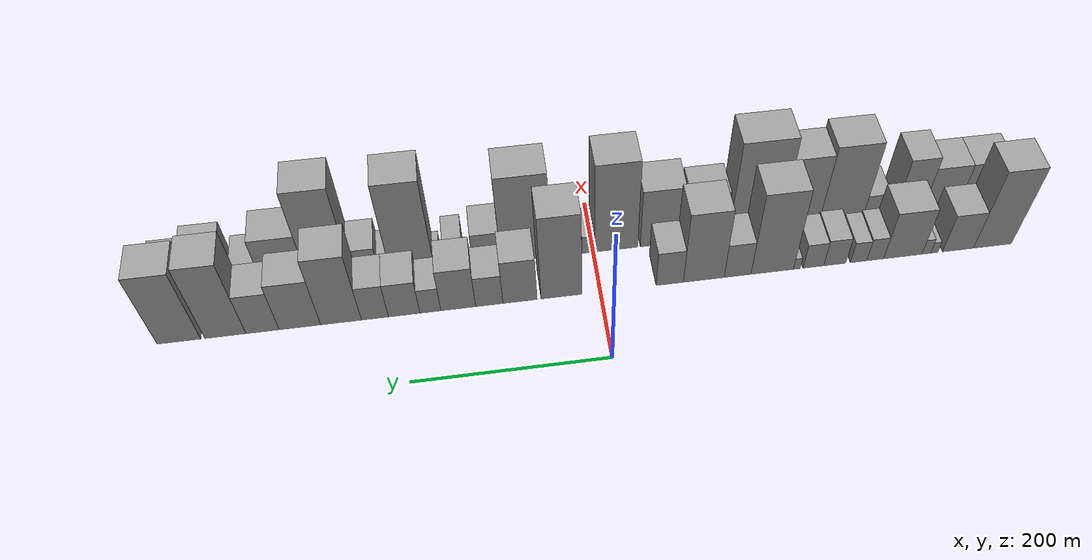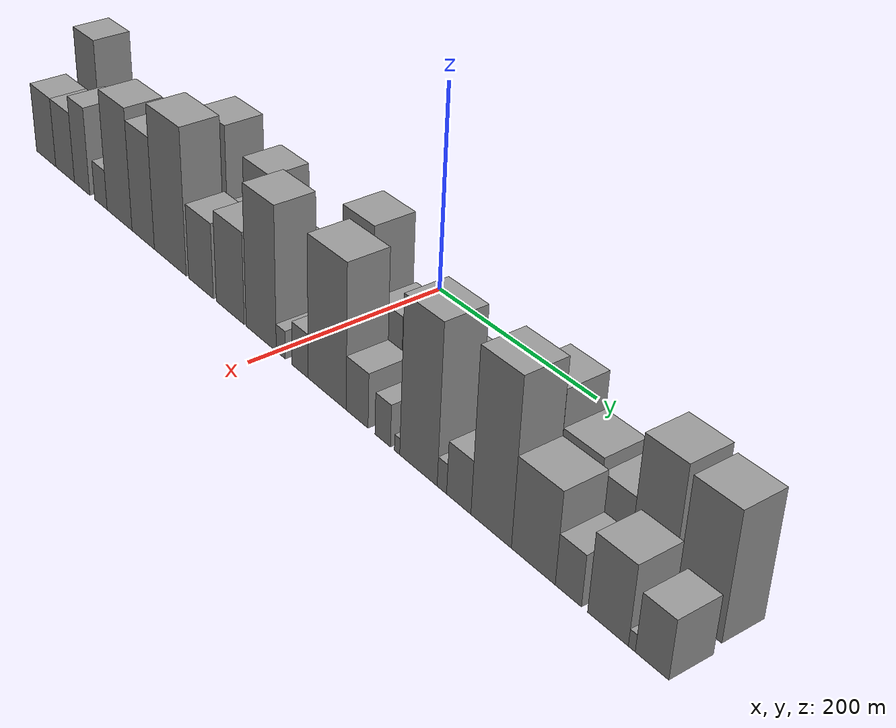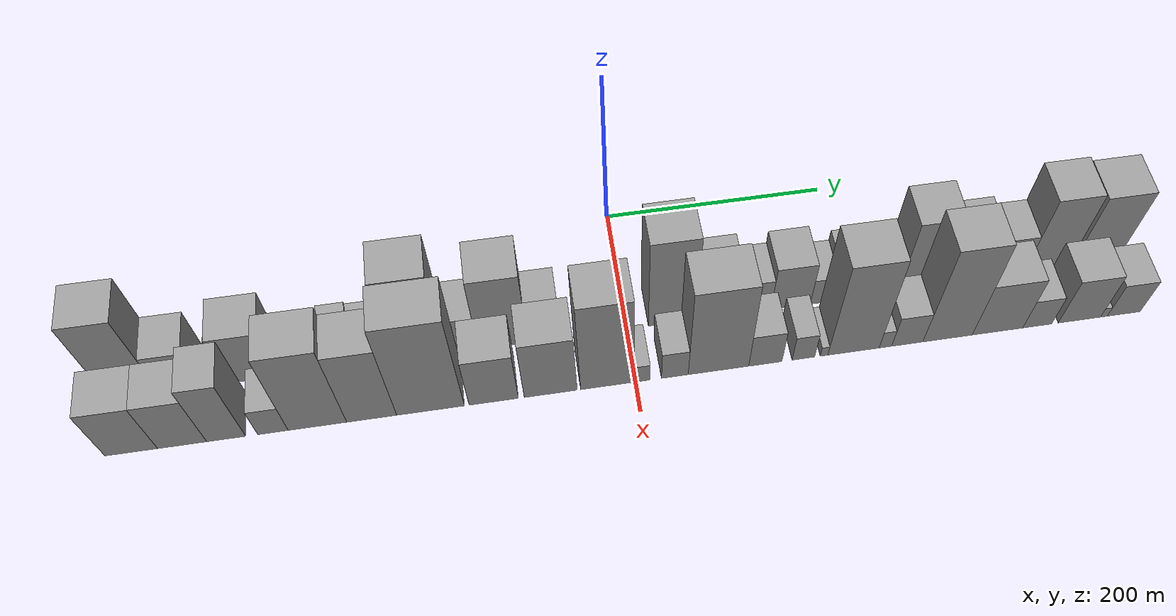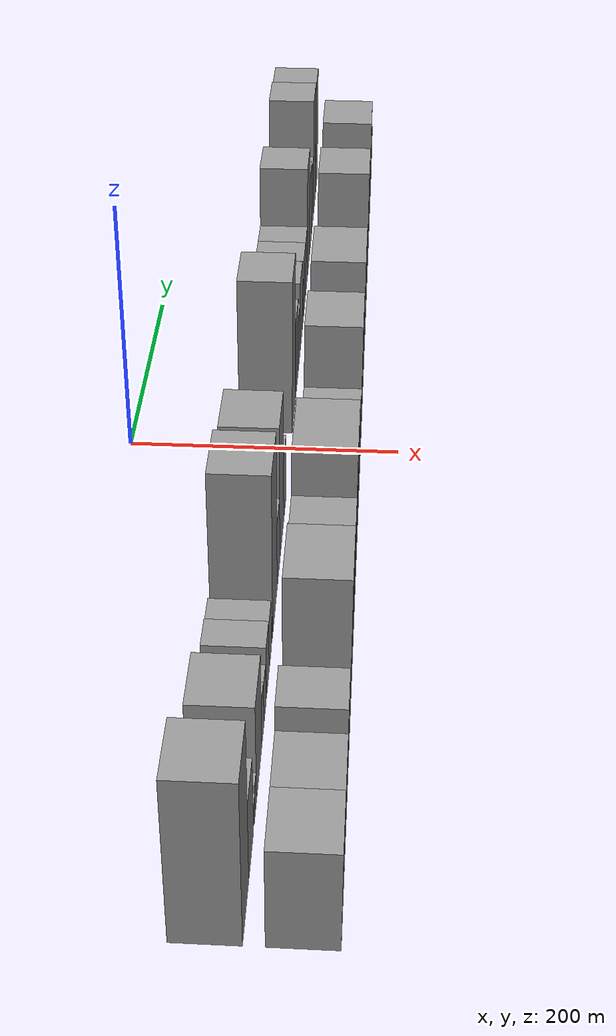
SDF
<sdf version="1.6">
 <world name="default">
  <scene>
   <sky><clouds><speed>12</speed></clouds></sky>
   <ambient>0.4 0.4 0.4 1</ambient>
   <background>0.7 0.7 0.7 1</background>
   <shadows>1</shadows>
  </scene>
  <gravity>0 0 -9.8066</gravity>
  <magnetic_field>6e-06 2.3e-05 -4.2e-05</magnetic_field>
  <physics default="0" name="default_physics" type="ode">
   <ode>
    <solver>
     <type>quick</type>
     <iters>10</iters>
     <sor>1.0</sor>
     <use_dynamic_moi_rescaling>0</use_dynamic_moi_rescaling>
    </solver>
    <constraints>
     <cfm>0</cfm>
     <erp>0.2</erp>
     <contact_max_correcting_vel>100</contact_max_correcting_vel>
     <contact_surface_layer>0.001</contact_surface_layer>
    </constraints>
   </ode>
   <max_step_size>0.004</max_step_size>
   <real_time_factor>1</real_time_factor>
   <real_time_update_rate>250</real_time_update_rate>
  </physics>
  <light name="sun" type="directional">
   <pose>0 0 10 0 0 0</pose>
   <diffuse>0.8 0.8 0.8 1</diffuse>
   <specular>0.2 0.2 0.2 1</specular>
   <attenuation>
    <range>1000</range>
    <constant>0.9</constant>
    <linear>0.01</linear>
    <quadratic>0.001</quadratic>
   </attenuation>
   <direction>-0.5 0.1 -0.9</direction>
  </light>
  <model name="building_1">
   <static>1</static>
   <pose>100.0000 -422.8043 0 0.000000 0.000000 0.000000</pose>
   <link name="link">
    <pose>0 0 61.50 0 0 0</pose>
    <collision name="collision"><geometry><box><size>40.0000 42.3913 123.0000</size></box></geometry></collision>
    <visual name="visual">
     <cast_shadows>0</cast_shadows>
     <geometry><box><size>40.0000 42.3913 123.0000</size></box></geometry>
     <material>
      <script>
       <uri>model://grey_wall/materials/scripts</uri>
       <uri>model://grey_wall/materials/textures</uri>
       <name>vrc/grey_wall</name>
      </script>
     </material>
    </visual>
   </link>
  </model>
  <model name="building_2">
   <static>1</static>
   <pose>100.0000 -384.4804 0 0.000000 0.000000 0.000000</pose>
   <link name="link">
    <pose>0 0 30.00 0 0 0</pose>
    <collision name="collision"><geometry><box><size>40.0000 34.2565 60.0000</size></box></geometry></collision>
    <visual name="visual">
     <cast_shadows>0</cast_shadows>
     <geometry><box><size>40.0000 34.2565 60.0000</size></box></geometry>
     <material>
      <script>
       <uri>model://grey_wall/materials/scripts</uri>
       <uri>model://grey_wall/materials/textures</uri>
       <name>vrc/grey_wall</name>
      </script>
     </material>
    </visual>
   </link>
  </model>
  <model name="building_3">
   <static>1</static>
   <pose>100.0000 -358.4187 0 0.000000 0.000000 0.000000</pose>
   <link name="link">
    <pose>0 0 9.00 0 0 0</pose>
    <collision name="collision"><geometry><box><size>40.0000 7.8670 18.0000</size></box></geometry></collision>
    <visual name="visual">
     <cast_shadows>0</cast_shadows>
     <geometry><box><size>40.0000 7.8670 18.0000</size></box></geometry>
     <material>
      <script>
       <uri>model://grey_wall/materials/scripts</uri>
       <uri>model://grey_wall/materials/textures</uri>
       <name>vrc/grey_wall</name>
      </script>
     </material>
    </visual>
   </link>
  </model>
  <model name="building_4">
   <static>1</static>
   <pose>100.0000 -349.5618 0 0.000000 0.000000 0.000000</pose>
   <link name="link">
    <pose>0 0 12.00 0 0 0</pose>
    <collision name="collision"><geometry><box><size>40.0000 9.8467 24.0000</size></box></geometry></collision>
    <visual name="visual">
     <cast_shadows>0</cast_shadows>
     <geometry><box><size>40.0000 9.8467 24.0000</size></box></geometry>
     <material>
      <script>
       <uri>model://grey_wall/materials/scripts</uri>
       <uri>model://grey_wall/materials/textures</uri>
       <name>vrc/grey_wall</name>
      </script>
     </material>
    </visual>
   </link>
  </model>
  <model name="building_5">
   <static>1</static>
   <pose>100.0000 -323.5742 0 0.000000 0.000000 0.000000</pose>
   <link name="link">
    <pose>0 0 37.50 0 0 0</pose>
    <collision name="collision"><geometry><box><size>40.0000 42.1285 75.0000</size></box></geometry></collision>
    <visual name="visual">
     <cast_shadows>0</cast_shadows>
     <geometry><box><size>40.0000 42.1285 75.0000</size></box></geometry>
     <material>
      <script>
       <uri>model://grey_wall/materials/scripts</uri>
       <uri>model://grey_wall/materials/textures</uri>
       <name>vrc/grey_wall</name>
      </script>
     </material>
    </visual>
   </link>
  </model>
  <model name="building_6">
   <static>1</static>
   <pose>100.0000 -293.2980 0 0.000000 0.000000 0.000000</pose>
   <link name="link">
    <pose>0 0 18.00 0 0 0</pose>
    <collision name="collision"><geometry><box><size>40.0000 18.4240 36.0000</size></box></geometry></collision>
    <visual name="visual">
     <cast_shadows>0</cast_shadows>
     <geometry><box><size>40.0000 18.4240 36.0000</size></box></geometry>
     <material>
      <script>
       <uri>model://grey_wall/materials/scripts</uri>
       <uri>model://grey_wall/materials/textures</uri>
       <name>vrc/grey_wall</name>
      </script>
     </material>
    </visual>
   </link>
  </model>
  <model name="building_7">
   <static>1</static>
   <pose>100.0000 -275.1770 0 0.000000 0.000000 0.000000</pose>
   <link name="link">
    <pose>0 0 16.50 0 0 0</pose>
    <collision name="collision"><geometry><box><size>40.0000 17.8179 33.0000</size></box></geometry></collision>
    <visual name="visual">
     <cast_shadows>0</cast_shadows>
     <geometry><box><size>40.0000 17.8179 33.0000</size></box></geometry>
     <material>
      <script>
       <uri>model://grey_wall/materials/scripts</uri>
       <uri>model://grey_wall/materials/textures</uri>
       <name>vrc/grey_wall</name>
      </script>
     </material>
    </visual>
   </link>
  </model>
  <model name="building_8">
   <static>1</static>
   <pose>100.0000 -249.3098 0 0.000000 0.000000 0.000000</pose>
   <link name="link">
    <pose>0 0 21.00 0 0 0</pose>
    <collision name="collision"><geometry><box><size>40.0000 23.9167 42.0000</size></box></geometry></collision>
    <visual name="visual">
     <cast_shadows>0</cast_shadows>
     <geometry><box><size>40.0000 23.9167 42.0000</size></box></geometry>
     <material>
      <script>
       <uri>model://grey_wall/materials/scripts</uri>
       <uri>model://grey_wall/materials/textures</uri>
       <name>vrc/grey_wall</name>
      </script>
     </material>
    </visual>
   </link>
  </model>
  <model name="building_9">
   <static>1</static>
   <pose>100.0000 -226.1131 0 0.000000 0.000000 0.000000</pose>
   <link name="link">
    <pose>0 0 19.50 0 0 0</pose>
    <collision name="collision"><geometry><box><size>40.0000 22.4766 39.0000</size></box></geometry></collision>
    <visual name="visual">
     <cast_shadows>0</cast_shadows>
     <geometry><box><size>40.0000 22.4766 39.0000</size></box></geometry>
     <material>
      <script>
       <uri>model://grey_wall/materials/scripts</uri>
       <uri>model://grey_wall/materials/textures</uri>
       <name>vrc/grey_wall</name>
      </script>
     </material>
    </visual>
   </link>
  </model>
  <model name="building_10">
   <static>1</static>
   <pose>100.0000 -208.1964 0 0.000000 0.000000 0.000000</pose>
   <link name="link">
    <pose>0 0 9.00 0 0 0</pose>
    <collision name="collision"><geometry><box><size>40.0000 7.3569 18.0000</size></box></geometry></collision>
    <visual name="visual">
     <cast_shadows>0</cast_shadows>
     <geometry><box><size>40.0000 7.3569 18.0000</size></box></geometry>
     <material>
      <script>
       <uri>model://grey_wall/materials/scripts</uri>
       <uri>model://grey_wall/materials/textures</uri>
       <name>vrc/grey_wall</name>
      </script>
     </material>
    </visual>
   </link>
  </model>
  <model name="building_11">
   <static>1</static>
   <pose>100.0000 -181.6453 0 0.000000 0.000000 0.000000</pose>
   <link name="link">
    <pose>0 0 64.50 0 0 0</pose>
    <collision name="collision"><geometry><box><size>40.0000 45.7452 129.0000</size></box></geometry></collision>
    <visual name="visual">
     <cast_shadows>0</cast_shadows>
     <geometry><box><size>40.0000 45.7452 129.0000</size></box></geometry>
     <material>
      <script>
       <uri>model://grey_wall/materials/scripts</uri>
       <uri>model://grey_wall/materials/textures</uri>
       <name>vrc/grey_wall</name>
      </script>
     </material>
    </visual>
   </link>
  </model>
  <model name="building_12">
   <static>1</static>
   <pose>100.0000 -144.4509 0 0.000000 0.000000 0.000000</pose>
   <link name="link">
    <pose>0 0 27.00 0 0 0</pose>
    <collision name="collision"><geometry><box><size>40.0000 28.6436 54.0000</size></box></geometry></collision>
    <visual name="visual">
     <cast_shadows>0</cast_shadows>
     <geometry><box><size>40.0000 28.6436 54.0000</size></box></geometry>
     <material>
      <script>
       <uri>model://grey_wall/materials/scripts</uri>
       <uri>model://grey_wall/materials/textures</uri>
       <name>vrc/grey_wall</name>
      </script>
     </material>
    </visual>
   </link>
  </model>
  <model name="building_13">
   <static>1</static>
   <pose>100.0000 -108.4827 0 0.000000 0.000000 0.000000</pose>
   <link name="link">
    <pose>0 0 55.50 0 0 0</pose>
    <collision name="collision"><geometry><box><size>40.0000 43.2927 111.0000</size></box></geometry></collision>
    <visual name="visual">
     <cast_shadows>0</cast_shadows>
     <geometry><box><size>40.0000 43.2927 111.0000</size></box></geometry>
     <material>
      <script>
       <uri>model://grey_wall/materials/scripts</uri>
       <uri>model://grey_wall/materials/textures</uri>
       <name>vrc/grey_wall</name>
      </script>
     </material>
    </visual>
   </link>
  </model>
  <model name="building_14">
   <static>1</static>
   <pose>100.0000 -72.4006 0 0.000000 0.000000 0.000000</pose>
   <link name="link">
    <pose>0 0 27.00 0 0 0</pose>
    <collision name="collision"><geometry><box><size>40.0000 28.8714 54.0000</size></box></geometry></collision>
    <visual name="visual">
     <cast_shadows>0</cast_shadows>
     <geometry><box><size>40.0000 28.8714 54.0000</size></box></geometry>
     <material>
      <script>
       <uri>model://grey_wall/materials/scripts</uri>
       <uri>model://grey_wall/materials/textures</uri>
       <name>vrc/grey_wall</name>
      </script>
     </material>
    </visual>
   </link>
  </model>
  <model name="building_15">
   <static>1</static>
   <pose>100.0000 41.0591 0 0.000000 0.000000 0.000000</pose>
   <link name="link">
    <pose>0 0 66.00 0 0 0</pose>
    <collision name="collision"><geometry><box><size>40.0000 42.6827 132.0000</size></box></geometry></collision>
    <visual name="visual">
     <cast_shadows>0</cast_shadows>
     <geometry><box><size>40.0000 42.6827 132.0000</size></box></geometry>
     <material>
      <script>
       <uri>model://grey_wall/materials/scripts</uri>
       <uri>model://grey_wall/materials/textures</uri>
       <name>vrc/grey_wall</name>
      </script>
     </material>
    </visual>
   </link>
  </model>
  <model name="building_16">
   <static>1</static>
   <pose>100.0000 84.0272 0 0.000000 0.000000 0.000000</pose>
   <link name="link">
    <pose>0 0 34.50 0 0 0</pose>
    <collision name="collision"><geometry><box><size>40.0000 35.2536 69.0000</size></box></geometry></collision>
    <visual name="visual">
     <cast_shadows>0</cast_shadows>
     <geometry><box><size>40.0000 35.2536 69.0000</size></box></geometry>
     <material>
      <script>
       <uri>model://grey_wall/materials/scripts</uri>
       <uri>model://grey_wall/materials/textures</uri>
       <name>vrc/grey_wall</name>
      </script>
     </material>
    </visual>
   </link>
  </model>
  <model name="building_17">
   <static>1</static>
   <pose>100.0000 115.7076 0 0.000000 0.000000 0.000000</pose>
   <link name="link">
    <pose>0 0 24.00 0 0 0</pose>
    <collision name="collision"><geometry><box><size>40.0000 28.1073 48.0000</size></box></geometry></collision>
    <visual name="visual">
     <cast_shadows>0</cast_shadows>
     <geometry><box><size>40.0000 28.1073 48.0000</size></box></geometry>
     <material>
      <script>
       <uri>model://grey_wall/materials/scripts</uri>
       <uri>model://grey_wall/materials/textures</uri>
       <name>vrc/grey_wall</name>
      </script>
     </material>
    </visual>
   </link>
  </model>
  <model name="building_18">
   <static>1</static>
   <pose>100.0000 147.5798 0 0.000000 0.000000 0.000000</pose>
   <link name="link">
    <pose>0 0 33.00 0 0 0</pose>
    <collision name="collision"><geometry><box><size>40.0000 35.6371 66.0000</size></box></geometry></collision>
    <visual name="visual">
     <cast_shadows>0</cast_shadows>
     <geometry><box><size>40.0000 35.6371 66.0000</size></box></geometry>
     <material>
      <script>
       <uri>model://grey_wall/materials/scripts</uri>
       <uri>model://grey_wall/materials/textures</uri>
       <name>vrc/grey_wall</name>
      </script>
     </material>
    </visual>
   </link>
  </model>
  <model name="building_19">
   <static>1</static>
   <pose>100.0000 176.0471 0 0.000000 0.000000 0.000000</pose>
   <link name="link">
    <pose>0 0 19.50 0 0 0</pose>
    <collision name="collision"><geometry><box><size>40.0000 21.2976 39.0000</size></box></geometry></collision>
    <visual name="visual">
     <cast_shadows>0</cast_shadows>
     <geometry><box><size>40.0000 21.2976 39.0000</size></box></geometry>
     <material>
      <script>
       <uri>model://grey_wall/materials/scripts</uri>
       <uri>model://grey_wall/materials/textures</uri>
       <name>vrc/grey_wall</name>
      </script>
     </material>
    </visual>
   </link>
  </model>
  <model name="building_20">
   <static>1</static>
   <pose>100.0000 202.6414 0 0.000000 0.000000 0.000000</pose>
   <link name="link">
    <pose>0 0 27.00 0 0 0</pose>
    <collision name="collision"><geometry><box><size>40.0000 31.8909 54.0000</size></box></geometry></collision>
    <visual name="visual">
     <cast_shadows>0</cast_shadows>
     <geometry><box><size>40.0000 31.8909 54.0000</size></box></geometry>
     <material>
      <script>
       <uri>model://grey_wall/materials/scripts</uri>
       <uri>model://grey_wall/materials/textures</uri>
       <name>vrc/grey_wall</name>
      </script>
     </material>
    </visual>
   </link>
  </model>
  <model name="building_21">
   <static>1</static>
   <pose>100.0000 232.2344 0 0.000000 0.000000 0.000000</pose>
   <link name="link">
    <pose>0 0 27.00 0 0 0</pose>
    <collision name="collision"><geometry><box><size>40.0000 27.2950 54.0000</size></box></geometry></collision>
    <visual name="visual">
     <cast_shadows>0</cast_shadows>
     <geometry><box><size>40.0000 27.2950 54.0000</size></box></geometry>
     <material>
      <script>
       <uri>model://grey_wall/materials/scripts</uri>
       <uri>model://grey_wall/materials/textures</uri>
       <name>vrc/grey_wall</name>
      </script>
     </material>
    </visual>
   </link>
  </model>
  <model name="building_22">
   <static>1</static>
   <pose>100.0000 266.3312 0 0.000000 0.000000 0.000000</pose>
   <link name="link">
    <pose>0 0 54.00 0 0 0</pose>
    <collision name="collision"><geometry><box><size>40.0000 40.8987 108.0000</size></box></geometry></collision>
    <visual name="visual">
     <cast_shadows>0</cast_shadows>
     <geometry><box><size>40.0000 40.8987 108.0000</size></box></geometry>
     <material>
      <script>
       <uri>model://grey_wall/materials/scripts</uri>
       <uri>model://grey_wall/materials/textures</uri>
       <name>vrc/grey_wall</name>
      </script>
     </material>
    </visual>
   </link>
  </model>
  <model name="building_23">
   <static>1</static>
   <pose>100.0000 307.5057 0 0.000000 0.000000 0.000000</pose>
   <link name="link">
    <pose>0 0 37.50 0 0 0</pose>
    <collision name="collision"><geometry><box><size>40.0000 41.4503 75.0000</size></box></geometry></collision>
    <visual name="visual">
     <cast_shadows>0</cast_shadows>
     <geometry><box><size>40.0000 41.4503 75.0000</size></box></geometry>
     <material>
      <script>
       <uri>model://grey_wall/materials/scripts</uri>
       <uri>model://grey_wall/materials/textures</uri>
       <name>vrc/grey_wall</name>
      </script>
     </material>
    </visual>
   </link>
  </model>
  <model name="building_24">
   <static>1</static>
   <pose>100.0000 344.7179 0 0.000000 0.000000 0.000000</pose>
   <link name="link">
    <pose>0 0 31.50 0 0 0</pose>
    <collision name="collision"><geometry><box><size>40.0000 32.9742 63.0000</size></box></geometry></collision>
    <visual name="visual">
     <cast_shadows>0</cast_shadows>
     <geometry><box><size>40.0000 32.9742 63.0000</size></box></geometry>
     <material>
      <script>
       <uri>model://grey_wall/materials/scripts</uri>
       <uri>model://grey_wall/materials/textures</uri>
       <name>vrc/grey_wall</name>
      </script>
     </material>
    </visual>
   </link>
  </model>
  <model name="building_25">
   <static>1</static>
   <pose>100.0000 381.5132 0 0.000000 0.000000 0.000000</pose>
   <link name="link">
    <pose>0 0 58.50 0 0 0</pose>
    <collision name="collision"><geometry><box><size>40.0000 40.6165 117.0000</size></box></geometry></collision>
    <visual name="visual">
     <cast_shadows>0</cast_shadows>
     <geometry><box><size>40.0000 40.6165 117.0000</size></box></geometry>
     <material>
      <script>
       <uri>model://grey_wall/materials/scripts</uri>
       <uri>model://grey_wall/materials/textures</uri>
       <name>vrc/grey_wall</name>
      </script>
     </material>
    </visual>
   </link>
  </model>
  <model name="building_26">
   <static>1</static>
   <pose>100.0000 427.1948 0 0.000000 0.000000 0.000000</pose>
   <link name="link">
    <pose>0 0 55.50 0 0 0</pose>
    <collision name="collision"><geometry><box><size>40.0000 42.7465 111.0000</size></box></geometry></collision>
    <visual name="visual">
     <cast_shadows>0</cast_shadows>
     <geometry><box><size>40.0000 42.7465 111.0000</size></box></geometry>
     <material>
      <script>
       <uri>model://grey_wall/materials/scripts</uri>
       <uri>model://grey_wall/materials/textures</uri>
       <name>vrc/grey_wall</name>
      </script>
     </material>
    </visual>
   </link>
  </model>
  <model name="building_27">
   <static>1</static>
   <pose>152.0000 -422.5892 0 0.000000 0.000000 0.000000</pose>
   <link name="link">
    <pose>0 0 37.50 0 0 0</pose>
    <collision name="collision"><geometry><box><size>40.0000 42.8216 75.0000</size></box></geometry></collision>
    <visual name="visual">
     <cast_shadows>0</cast_shadows>
     <geometry><box><size>40.0000 42.8216 75.0000</size></box></geometry>
     <material>
      <script>
       <uri>model://grey_wall/materials/scripts</uri>
       <uri>model://grey_wall/materials/textures</uri>
       <name>vrc/grey_wall</name>
      </script>
     </material>
    </visual>
   </link>
  </model>
  <model name="building_28">
   <static>1</static>
   <pose>152.0000 -381.1233 0 0.000000 0.000000 0.000000</pose>
   <link name="link">
    <pose>0 0 37.50 0 0 0</pose>
    <collision name="collision"><geometry><box><size>40.0000 40.1102 75.0000</size></box></geometry></collision>
    <visual name="visual">
     <cast_shadows>0</cast_shadows>
     <geometry><box><size>40.0000 40.1102 75.0000</size></box></geometry>
     <material>
      <script>
       <uri>model://grey_wall/materials/scripts</uri>
       <uri>model://grey_wall/materials/textures</uri>
       <name>vrc/grey_wall</name>
      </script>
     </material>
    </visual>
   </link>
  </model>
  <model name="building_29">
   <static>1</static>
   <pose>152.0000 -345.0966 0 0.000000 0.000000 0.000000</pose>
   <link name="link">
    <pose>0 0 46.50 0 0 0</pose>
    <collision name="collision"><geometry><box><size>40.0000 31.9432 93.0000</size></box></geometry></collision>
    <visual name="visual">
     <cast_shadows>0</cast_shadows>
     <geometry><box><size>40.0000 31.9432 93.0000</size></box></geometry>
     <material>
      <script>
       <uri>model://grey_wall/materials/scripts</uri>
       <uri>model://grey_wall/materials/textures</uri>
       <name>vrc/grey_wall</name>
      </script>
     </material>
    </visual>
   </link>
  </model>
  <model name="building_30">
   <static>1</static>
   <pose>152.0000 -306.5650 0 0.000000 0.000000 0.000000</pose>
   <link name="link">
    <pose>0 0 21.00 0 0 0</pose>
    <collision name="collision"><geometry><box><size>40.0000 25.1198 42.0000</size></box></geometry></collision>
    <visual name="visual">
     <cast_shadows>0</cast_shadows>
     <geometry><box><size>40.0000 25.1198 42.0000</size></box></geometry>
     <material>
      <script>
       <uri>model://grey_wall/materials/scripts</uri>
       <uri>model://grey_wall/materials/textures</uri>
       <name>vrc/grey_wall</name>
      </script>
     </material>
    </visual>
   </link>
  </model>
  <model name="building_31">
   <static>1</static>
   <pose>152.0000 -269.6627 0 0.000000 0.000000 0.000000</pose>
   <link name="link">
    <pose>0 0 63.00 0 0 0</pose>
    <collision name="collision"><geometry><box><size>40.0000 48.6849 126.0000</size></box></geometry></collision>
    <visual name="visual">
     <cast_shadows>0</cast_shadows>
     <geometry><box><size>40.0000 48.6849 126.0000</size></box></geometry>
     <material>
      <script>
       <uri>model://grey_wall/materials/scripts</uri>
       <uri>model://grey_wall/materials/textures</uri>
       <name>vrc/grey_wall</name>
      </script>
     </material>
    </visual>
   </link>
  </model>
  <model name="building_32">
   <static>1</static>
   <pose>152.0000 -224.4103 0 0.000000 0.000000 0.000000</pose>
   <link name="link">
    <pose>0 0 57.00 0 0 0</pose>
    <collision name="collision"><geometry><box><size>40.0000 41.8199 114.0000</size></box></geometry></collision>
    <visual name="visual">
     <cast_shadows>0</cast_shadows>
     <geometry><box><size>40.0000 41.8199 114.0000</size></box></geometry>
     <material>
      <script>
       <uri>model://grey_wall/materials/scripts</uri>
       <uri>model://grey_wall/materials/textures</uri>
       <name>vrc/grey_wall</name>
      </script>
     </material>
    </visual>
   </link>
  </model>
  <model name="building_33">
   <static>1</static>
   <pose>152.0000 -174.9630 0 0.000000 0.000000 0.000000</pose>
   <link name="link">
    <pose>0 0 73.50 0 0 0</pose>
    <collision name="collision"><geometry><box><size>40.0000 57.0747 147.0000</size></box></geometry></collision>
    <visual name="visual">
     <cast_shadows>0</cast_shadows>
     <geometry><box><size>40.0000 57.0747 147.0000</size></box></geometry>
     <material>
      <script>
       <uri>model://grey_wall/materials/scripts</uri>
       <uri>model://grey_wall/materials/textures</uri>
       <name>vrc/grey_wall</name>
      </script>
     </material>
    </visual>
   </link>
  </model>
  <model name="building_34">
   <static>1</static>
   <pose>152.0000 -121.4631 0 0.000000 0.000000 0.000000</pose>
   <link name="link">
    <pose>0 0 37.50 0 0 0</pose>
    <collision name="collision"><geometry><box><size>40.0000 41.9253 75.0000</size></box></geometry></collision>
    <visual name="visual">
     <cast_shadows>0</cast_shadows>
     <geometry><box><size>40.0000 41.9253 75.0000</size></box></geometry>
     <material>
      <script>
       <uri>model://grey_wall/materials/scripts</uri>
       <uri>model://grey_wall/materials/textures</uri>
       <name>vrc/grey_wall</name>
      </script>
     </material>
    </visual>
   </link>
  </model>
  <model name="building_35">
   <static>1</static>
   <pose>152.0000 -72.8469 0 0.000000 0.000000 0.000000</pose>
   <link name="link">
    <pose>0 0 45.00 0 0 0</pose>
    <collision name="collision"><geometry><box><size>40.0000 45.3071 90.0000</size></box></geometry></collision>
    <visual name="visual">
     <cast_shadows>0</cast_shadows>
     <geometry><box><size>40.0000 45.3071 90.0000</size></box></geometry>
     <material>
      <script>
       <uri>model://grey_wall/materials/scripts</uri>
       <uri>model://grey_wall/materials/textures</uri>
       <name>vrc/grey_wall</name>
      </script>
     </material>
    </visual>
   </link>
  </model>
  <model name="building_36">
   <static>1</static>
   <pose>152.0000 -23.9941 0 0.000000 0.000000 0.000000</pose>
   <link name="link">
    <pose>0 0 69.00 0 0 0</pose>
    <collision name="collision"><geometry><box><size>40.0000 46.3985 138.0000</size></box></geometry></collision>
    <visual name="visual">
     <cast_shadows>0</cast_shadows>
     <geometry><box><size>40.0000 46.3985 138.0000</size></box></geometry>
     <material>
      <script>
       <uri>model://grey_wall/materials/scripts</uri>
       <uri>model://grey_wall/materials/textures</uri>
       <name>vrc/grey_wall</name>
      </script>
     </material>
    </visual>
   </link>
  </model>
  <model name="building_37">
   <static>1</static>
   <pose>152.0000 5.9502 0 0.000000 0.000000 0.000000</pose>
   <link name="link">
    <pose>0 0 13.50 0 0 0</pose>
    <collision name="collision"><geometry><box><size>40.0000 13.4901 27.0000</size></box></geometry></collision>
    <visual name="visual">
     <cast_shadows>0</cast_shadows>
     <geometry><box><size>40.0000 13.4901 27.0000</size></box></geometry>
     <material>
      <script>
       <uri>model://grey_wall/materials/scripts</uri>
       <uri>model://grey_wall/materials/textures</uri>
       <name>vrc/grey_wall</name>
      </script>
     </material>
    </visual>
   </link>
  </model>
  <model name="building_38">
   <static>1</static>
   <pose>152.0000 34.3432 0 0.000000 0.000000 0.000000</pose>
   <link name="link">
    <pose>0 0 21.00 0 0 0</pose>
    <collision name="collision"><geometry><box><size>40.0000 23.2959 42.0000</size></box></geometry></collision>
    <visual name="visual">
     <cast_shadows>0</cast_shadows>
     <geometry><box><size>40.0000 23.2959 42.0000</size></box></geometry>
     <material>
      <script>
       <uri>model://grey_wall/materials/scripts</uri>
       <uri>model://grey_wall/materials/textures</uri>
       <name>vrc/grey_wall</name>
      </script>
     </material>
    </visual>
   </link>
  </model>
  <model name="building_39">
   <static>1</static>
   <pose>152.0000 72.4950 0 0.000000 0.000000 0.000000</pose>
   <link name="link">
    <pose>0 0 67.50 0 0 0</pose>
    <collision name="collision"><geometry><box><size>40.0000 53.0077 135.0000</size></box></geometry></collision>
    <visual name="visual">
     <cast_shadows>0</cast_shadows>
     <geometry><box><size>40.0000 53.0077 135.0000</size></box></geometry>
     <material>
      <script>
       <uri>model://grey_wall/materials/scripts</uri>
       <uri>model://grey_wall/materials/textures</uri>
       <name>vrc/grey_wall</name>
      </script>
     </material>
    </visual>
   </link>
  </model>
  <model name="building_40">
   <static>1</static>
   <pose>152.0000 113.6224 0 0.000000 0.000000 0.000000</pose>
   <link name="link">
    <pose>0 0 25.50 0 0 0</pose>
    <collision name="collision"><geometry><box><size>40.0000 29.2471 51.0000</size></box></geometry></collision>
    <visual name="visual">
     <cast_shadows>0</cast_shadows>
     <geometry><box><size>40.0000 29.2471 51.0000</size></box></geometry>
     <material>
      <script>
       <uri>model://grey_wall/materials/scripts</uri>
       <uri>model://grey_wall/materials/textures</uri>
       <name>vrc/grey_wall</name>
      </script>
     </material>
    </visual>
   </link>
  </model>
  <model name="building_41">
   <static>1</static>
   <pose>152.0000 147.2096 0 0.000000 0.000000 0.000000</pose>
   <link name="link">
    <pose>0 0 19.50 0 0 0</pose>
    <collision name="collision"><geometry><box><size>40.0000 19.9275 39.0000</size></box></geometry></collision>
    <visual name="visual">
     <cast_shadows>0</cast_shadows>
     <geometry><box><size>40.0000 19.9275 39.0000</size></box></geometry>
     <material>
      <script>
       <uri>model://grey_wall/materials/scripts</uri>
       <uri>model://grey_wall/materials/textures</uri>
       <name>vrc/grey_wall</name>
      </script>
     </material>
    </visual>
   </link>
  </model>
  <model name="building_42">
   <static>1</static>
   <pose>152.0000 165.5259 0 0.000000 0.000000 0.000000</pose>
   <link name="link">
    <pose>0 0 7.50 0 0 0</pose>
    <collision name="collision"><geometry><box><size>40.0000 6.7051 15.0000</size></box></geometry></collision>
    <visual name="visual">
     <cast_shadows>0</cast_shadows>
     <geometry><box><size>40.0000 6.7051 15.0000</size></box></geometry>
     <material>
      <script>
       <uri>model://grey_wall/materials/scripts</uri>
       <uri>model://grey_wall/materials/textures</uri>
       <name>vrc/grey_wall</name>
      </script>
     </material>
    </visual>
   </link>
  </model>
  <model name="building_43">
   <static>1</static>
   <pose>152.0000 191.7799 0 0.000000 0.000000 0.000000</pose>
   <link name="link">
    <pose>0 0 72.00 0 0 0</pose>
    <collision name="collision"><geometry><box><size>40.0000 45.8029 144.0000</size></box></geometry></collision>
    <visual name="visual">
     <cast_shadows>0</cast_shadows>
     <geometry><box><size>40.0000 45.8029 144.0000</size></box></geometry>
     <material>
      <script>
       <uri>model://grey_wall/materials/scripts</uri>
       <uri>model://grey_wall/materials/textures</uri>
       <name>vrc/grey_wall</name>
      </script>
     </material>
    </visual>
   </link>
  </model>
  <model name="building_44">
   <static>1</static>
   <pose>152.0000 220.2586 0 0.000000 0.000000 0.000000</pose>
   <link name="link">
    <pose>0 0 13.50 0 0 0</pose>
    <collision name="collision"><geometry><box><size>40.0000 11.1543 27.0000</size></box></geometry></collision>
    <visual name="visual">
     <cast_shadows>0</cast_shadows>
     <geometry><box><size>40.0000 11.1543 27.0000</size></box></geometry>
     <material>
      <script>
       <uri>model://grey_wall/materials/scripts</uri>
       <uri>model://grey_wall/materials/textures</uri>
       <name>vrc/grey_wall</name>
      </script>
     </material>
    </visual>
   </link>
  </model>
  <model name="building_45">
   <static>1</static>
   <pose>152.0000 239.8834 0 0.000000 0.000000 0.000000</pose>
   <link name="link">
    <pose>0 0 24.00 0 0 0</pose>
    <collision name="collision"><geometry><box><size>40.0000 28.0953 48.0000</size></box></geometry></collision>
    <visual name="visual">
     <cast_shadows>0</cast_shadows>
     <geometry><box><size>40.0000 28.0953 48.0000</size></box></geometry>
     <material>
      <script>
       <uri>model://grey_wall/materials/scripts</uri>
       <uri>model://grey_wall/materials/textures</uri>
       <name>vrc/grey_wall</name>
      </script>
     </material>
    </visual>
   </link>
  </model>
  <model name="building_46">
   <static>1</static>
   <pose>152.0000 276.3162 0 0.000000 0.000000 0.000000</pose>
   <link name="link">
    <pose>0 0 73.50 0 0 0</pose>
    <collision name="collision"><geometry><box><size>40.0000 44.7704 147.0000</size></box></geometry></collision>
    <visual name="visual">
     <cast_shadows>0</cast_shadows>
     <geometry><box><size>40.0000 44.7704 147.0000</size></box></geometry>
     <material>
      <script>
       <uri>model://grey_wall/materials/scripts</uri>
       <uri>model://grey_wall/materials/textures</uri>
       <name>vrc/grey_wall</name>
      </script>
     </material>
    </visual>
   </link>
  </model>
  <model name="building_47">
   <static>1</static>
   <pose>152.0000 321.6887 0 0.000000 0.000000 0.000000</pose>
   <link name="link">
    <pose>0 0 40.50 0 0 0</pose>
    <collision name="collision"><geometry><box><size>40.0000 45.9746 81.0000</size></box></geometry></collision>
    <visual name="visual">
     <cast_shadows>0</cast_shadows>
     <geometry><box><size>40.0000 45.9746 81.0000</size></box></geometry>
     <material>
      <script>
       <uri>model://grey_wall/materials/scripts</uri>
       <uri>model://grey_wall/materials/textures</uri>
       <name>vrc/grey_wall</name>
      </script>
     </material>
    </visual>
   </link>
  </model>
  <model name="building_48">
   <static>1</static>
   <pose>152.0000 357.8351 0 0.000000 0.000000 0.000000</pose>
   <link name="link">
    <pose>0 0 22.50 0 0 0</pose>
    <collision name="collision"><geometry><box><size>40.0000 26.3183 45.0000</size></box></geometry></collision>
    <visual name="visual">
     <cast_shadows>0</cast_shadows>
     <geometry><box><size>40.0000 26.3183 45.0000</size></box></geometry>
     <material>
      <script>
       <uri>model://grey_wall/materials/scripts</uri>
       <uri>model://grey_wall/materials/textures</uri>
       <name>vrc/grey_wall</name>
      </script>
     </material>
    </visual>
   </link>
  </model>
  <model name="building_49">
   <static>1</static>
   <pose>152.0000 396.4027 0 0.000000 0.000000 0.000000</pose>
   <link name="link">
    <pose>0 0 34.50 0 0 0</pose>
    <collision name="collision"><geometry><box><size>40.0000 38.8168 69.0000</size></box></geometry></collision>
    <visual name="visual">
     <cast_shadows>0</cast_shadows>
     <geometry><box><size>40.0000 38.8168 69.0000</size></box></geometry>
     <material>
      <script>
       <uri>model://grey_wall/materials/scripts</uri>
       <uri>model://grey_wall/materials/textures</uri>
       <name>vrc/grey_wall</name>
      </script>
     </material>
    </visual>
   </link>
  </model>
  <model name="building_50">
   <static>1</static>
   <pose>152.0000 419.0177 0 0.000000 0.000000 0.000000</pose>
   <link name="link">
    <pose>0 0 7.50 0 0 0</pose>
    <collision name="collision"><geometry><box><size>40.0000 6.4132 15.0000</size></box></geometry></collision>
    <visual name="visual">
     <cast_shadows>0</cast_shadows>
     <geometry><box><size>40.0000 6.4132 15.0000</size></box></geometry>
     <material>
      <script>
       <uri>model://grey_wall/materials/scripts</uri>
       <uri>model://grey_wall/materials/textures</uri>
       <name>vrc/grey_wall</name>
      </script>
     </material>
    </visual>
   </link>
  </model>
  <model name="building_51">
   <static>1</static>
   <pose>152.0000 437.4393 0 0.000000 0.000000 0.000000</pose>
   <link name="link">
    <pose>0 0 25.50 0 0 0</pose>
    <collision name="collision"><geometry><box><size>40.0000 30.4299 51.0000</size></box></geometry></collision>
    <visual name="visual">
     <cast_shadows>0</cast_shadows>
     <geometry><box><size>40.0000 30.4299 51.0000</size></box></geometry>
     <material>
      <script>
       <uri>model://grey_wall/materials/scripts</uri>
       <uri>model://grey_wall/materials/textures</uri>
       <name>vrc/grey_wall</name>
      </script>
     </material>
    </visual>
   </link>
  </model>
 </world>
</sdf>
